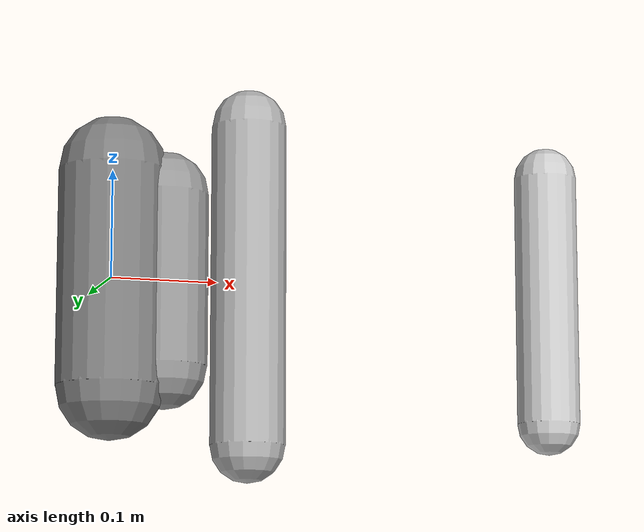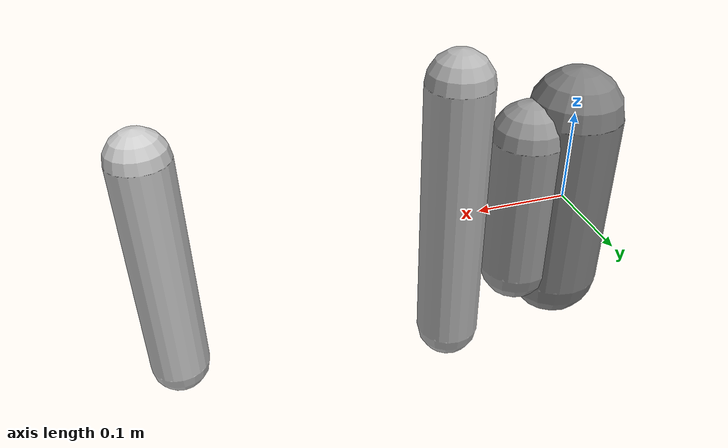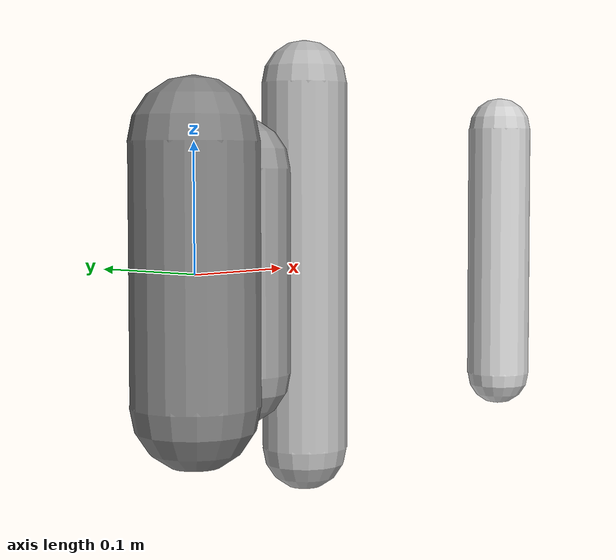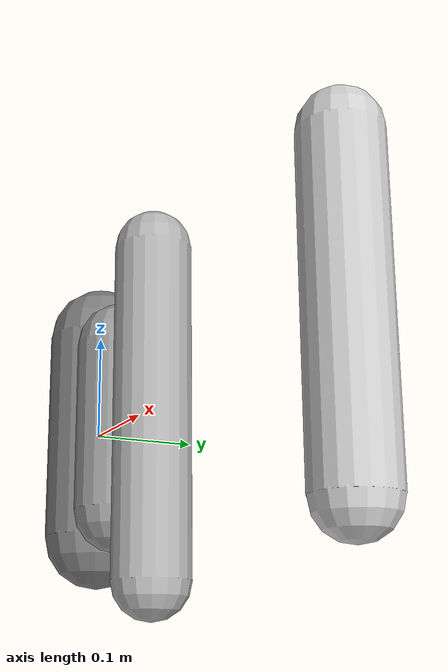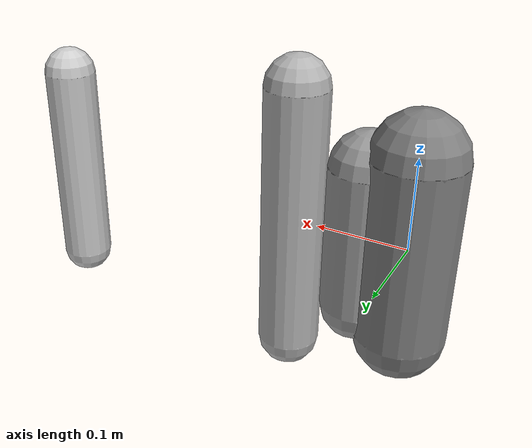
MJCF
<mujoco model="arm_4dof">
  <compiler angle="radian"/>
  <option gravity="0 0 -9.81"/>
  <worldbody>
    <body name="base_link">
      <joint name="shoulder_roll" type="hinge" axis="0 0 1" range="-1.57 1.57"/>
      <geom type="capsule" size="0.05 0.1" rgba="0.5 0.5 0.5 1"/>
      <body name="shoulder_pitch_link" pos="0.05 0 0">
        <joint name="shoulder_pitch" type="hinge" axis="0 0 1" range="-1.2 1.2"/>
        <geom type="capsule" size="0.04 0.08" rgba="0.6 0.6 0.6 1"/>
        <body name="upper_arm_link" pos="0.08 0 0">
          <joint name="upper_arm_yaw" type="hinge" axis="0 0 1" range="-1.57 1.57"/>
          <geom type="capsule" size="0.035 0.15" rgba="0.7 0.7 0.7 1"/>
          <body name="forearm_link" pos="0.3 0 0">
            <joint name="elbow" type="hinge" axis="0 0 1" range="0 2.5"/>
            <geom type="capsule" size="0.03 0.12" rgba="0.8 0.8 0.8 1"/>
          </body>
        </body>
      </body>
    </body>
  </worldbody>
</mujoco>
